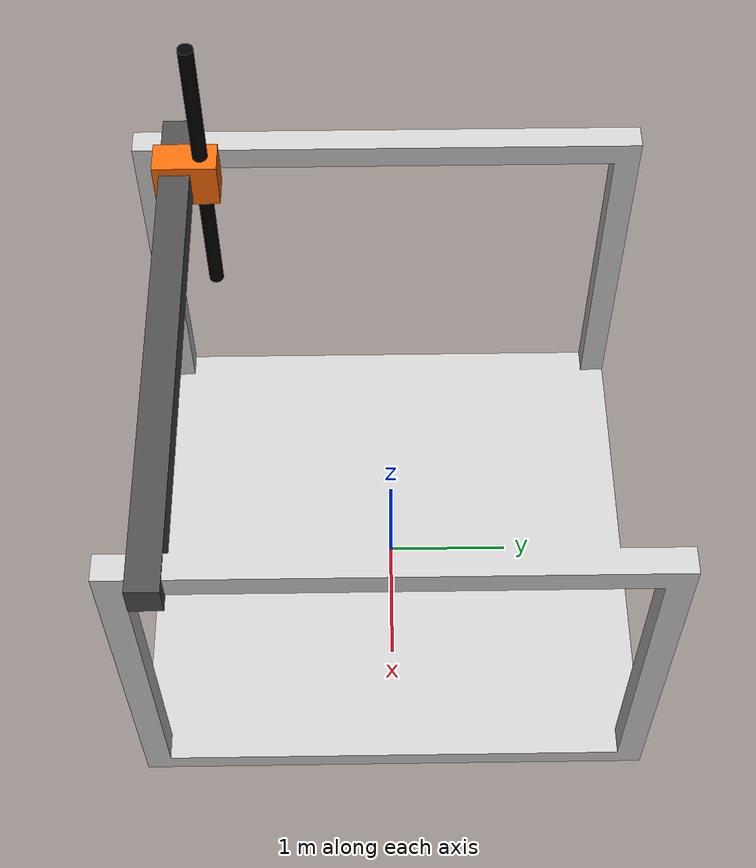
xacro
<?xml version="1.0" ?>
<robot name="new_robot" xmlns:xacro="http://ros.org/wiki/xacro">
  <material name="black">
      <color rgba="0.0 0.0 0.0 1.0"/>
  </material>

  <material name="dark">
    <color rgba="0.3 0.3 0.3 1.0"/>
  </material>

  <material name="grey">
    <color rgba="0.5 0.5 0.5 1.0"/>
  </material>

  <material name="orange">
    <color rgba="1 0.4235 0.0392 1.0"/>
  </material>
   <material name="blue">
    <color rgba="0.0 0.0 0.8 1.0"/>
  </material>

  <material name="light_black">
    <color rgba="0.8 0.8 0.8 1.0"/>
  </material>
  <xacro:include filename="$(find ppp_robot)/urdf/ppp_robot.gazebo.xacro"/>

  <link name="world"/>

  <joint name="base_joint" type="fixed">
    <parent link="world"/>
    <child link="base_link"/>
    <origin xyz="0 0 0.085" rpy="0 0 0"/>
  </joint>

  <link name="base_link">
    <visual>
      <origin xyz="0 0 0.0" rpy="0 0 0"/>
      <geometry>
        <mesh filename="package://ppp_robot/mesh/base.stl" scale="1 1 1"/>
      </geometry>
      <material name="light_black"/>

    </visual>

    <collision>
      <origin xyz="0 0 0.030" rpy="0 0 0"/>
      <geometry>
        <box size="4.0 4.0 0.2"/>

      </geometry>
    </collision>

    <inertial>
      <origin xyz="0 0 0" rpy="0 0 0"/>
      <mass value="1.3729096e+00"/>
      <inertia ixx="8.7002718e-03" ixy="-4.7576583e-05" ixz="1.1160499e-04"
               iyy="8.6195418e-03" iyz="-3.5422299e-06"
               izz="1.4612727e-02" />
    </inertial>
  </link>

  <joint name="first_axis_joint" type="prismatic">
    <parent link="base_link"/>
    <child link="first_axis_link"/>
    <origin xyz="0 -1.65 2.98" rpy="0 0 0"/>
    <axis xyz="0 1 0"/>
    <limit lower="0" upper="3.3" velocity="100" effort="100"/>
  </joint>

  <link name="first_axis_link">
    <visual>
      <origin xyz="0 0 0" rpy="0 0 0"/>
      <geometry>
        <mesh filename="package://ppp_robot/mesh/first_axis.stl" scale="1 1 1"/>
      </geometry>
      <material name="dark"/>

    </visual>

    <collision>
      <origin xyz="0 0 0" rpy="0 0 0"/>
      <geometry>
        <box size="4.2 0.24 0.26"/>

      </geometry>
    </collision>

    <inertial>
      <origin xyz="0 0 0" rpy="0 0 0"/>
      <mass value="1.3729096e+00"/>
      <inertia ixx="8.7002718e-03" ixy="-4.7576583e-05" ixz="1.1160499e-04"
               iyy="8.6195418e-03" iyz="-3.5422299e-06"
               izz="1.4612727e-02" />
    </inertial>
  </link>

  <joint name="second_axis_joint" type="prismatic">
    <parent link="first_axis_link"/>
    <child link="second_axis_link"/>
    <origin xyz="-1.65 0.08 0" rpy="0 0 0"/>
    <axis xyz="1 0 0"/>
    <limit lower="0" upper="3.3" velocity="100" effort="100"/>
  </joint>

  <link name="second_axis_link">
    <visual>
      <origin xyz="0 0 0" rpy="0 0 0"/>
      <geometry>
        <mesh filename="package://ppp_robot/mesh/second_axis.stl" scale="1 1 1"/>
      </geometry>
      <material name="orange"/>

    </visual>

    <collision>
      <origin xyz="0 0 0" rpy="0 0 0"/>
      <geometry>
        <box size="0.26 0.5 0.4"/>

      </geometry>
    </collision>

    <inertial>
      <origin xyz="0 0 0" rpy="0 0 0"/>
      <mass value="1.3729096e+00"/>
      <inertia ixx="8.7002718e-03" ixy="-4.7576583e-05" ixz="1.1160499e-04"
               iyy="8.6195418e-03" iyz="-3.5422299e-06"
               izz="1.4612727e-02" />
    </inertial>
  </link>

  <joint name="third_axis_joint" type="prismatic">
    <parent link="second_axis_link"/>
    <child link="third_axis_link"/>
    <origin xyz="0 0.12 0.02" rpy="0 0 0"/>
    <axis xyz="0 0 -1"/>
    <limit lower="0" upper="1" velocity="100" effort="100"/>
  </joint>

  <link name="third_axis_link">
    <visual>
      <origin xyz="0 0 0" rpy="0 0 0"/>
      <geometry>
        <mesh filename="package://ppp_robot/mesh/third_axis.stl" scale="1 1 1"/>
      </geometry>
      <material name="black"/>

    </visual>

    <collision>
      <origin xyz="0 0 0" rpy="0 0 0"/>
      <geometry>
        <cylinder length="2.58" radius="0.12"/>

      </geometry>
    </collision>

    <inertial>
      <origin xyz="0 0 0" rpy="0 0 0"/>
      <mass value="1.3729096e+00"/>
      <inertia ixx="8.7002718e-03" ixy="-4.7576583e-05" ixz="1.1160499e-04"
               iyy="8.6195418e-03" iyz="-3.5422299e-06"
               izz="1.4612727e-02" />
    </inertial>
  </link>

</robot>
